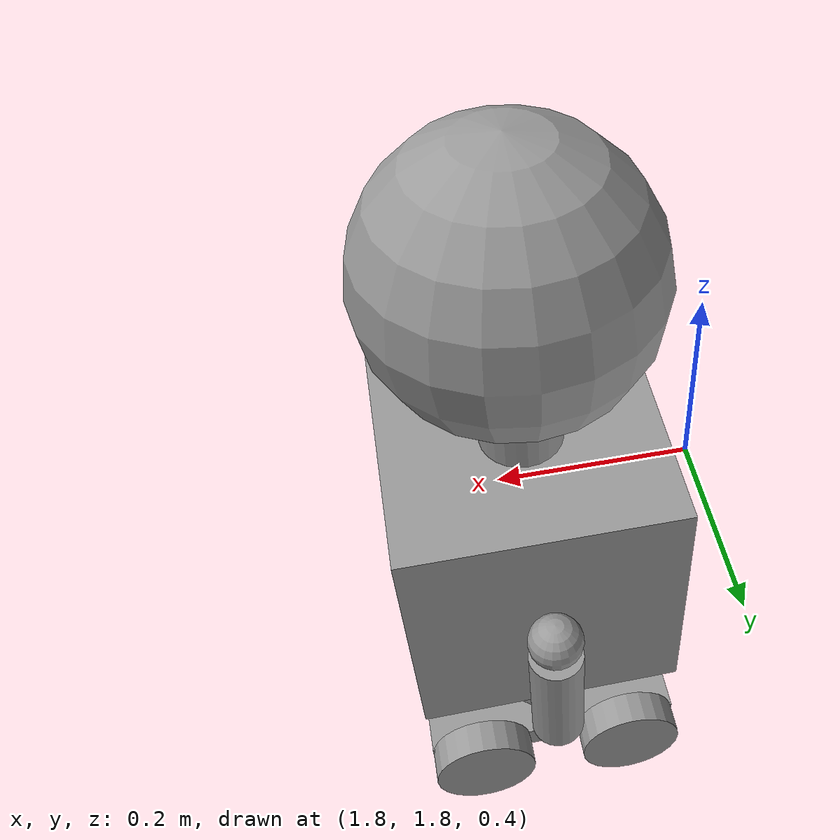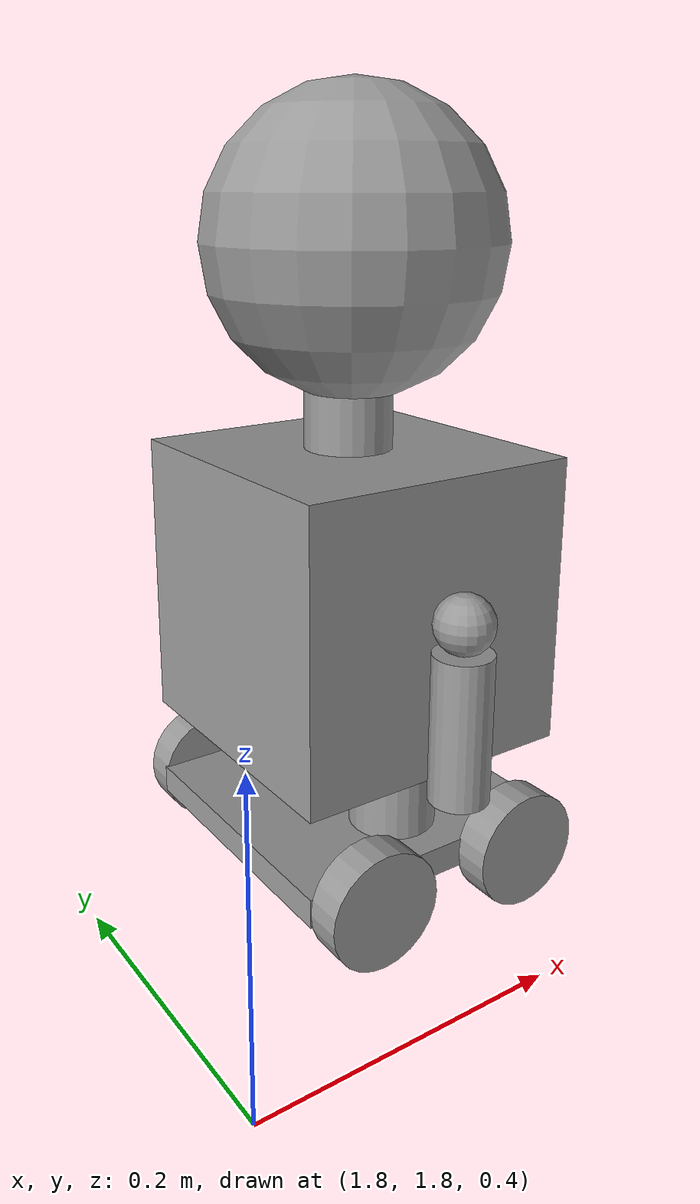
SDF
<?xml version='1.0'?>
<sdf version='1.6'>
  <model name='RoboX'>
    <link name='link_0'>
      <pose frame=''>2 1.99948 0.422775 0 -0 0</pose>
      <inertial>
        <mass>1</mass>
        <inertia>
          <ixx>0.166667</ixx>
          <ixy>0</ixy>
          <ixz>0</ixz>
          <iyy>0.166667</iyy>
          <iyz>0</iyz>
          <izz>0.166667</izz>
        </inertia>
        <pose frame=''>0 0 0 0 -0 0</pose>
      </inertial>
      <gravity>1</gravity>
      <self_collide>0</self_collide>
      <kinematic>0</kinematic>
      <visual name='visual'>
        <pose frame=''>0 0 0 0 -0 0</pose>
        <geometry>
          <box>
            <size>0.2 0.2 0.02</size>
          </box>
        </geometry>
        <material>
          <lighting>1</lighting>
          <script>
            <uri>file://media/materials/scripts/gazebo.material</uri>
            <name>Gazebo/Grey</name>
          </script>
          <shader type='pixel'>
            <normal_map>__default__</normal_map>
          </shader>
          <ambient>0.3 0.3 0.3 1</ambient>
          <diffuse>0.7 0.7 0.7 1</diffuse>
          <specular>0.01 0.01 0.01 1</specular>
          <emissive>0 0 0 1</emissive>
        </material>
        <transparency>0</transparency>
        <cast_shadows>1</cast_shadows>
      </visual>
      <collision name='collision'>
        <laser_retro>0</laser_retro>
        <max_contacts>10</max_contacts>
        <pose frame=''>0 0 0 0 -0 0</pose>
        <geometry>
          <box>
            <size>0.2 0.2 0.02</size>
          </box>
        </geometry>
        <surface>
          <friction>
            <ode>
              <mu>1</mu>
              <mu2>1</mu2>
              <fdir1>0 0 0</fdir1>
              <slip1>0</slip1>
              <slip2>0</slip2>
            </ode>
            <torsional>
              <coefficient>1</coefficient>
              <patch_radius>0</patch_radius>
              <surface_radius>0</surface_radius>
              <use_patch_radius>1</use_patch_radius>
              <ode>
                <slip>0</slip>
              </ode>
            </torsional>
          </friction>
          <bounce>
            <restitution_coefficient>0</restitution_coefficient>
            <threshold>1e+06</threshold>
          </bounce>
          <contact>
            <collide_without_contact>0</collide_without_contact>
            <collide_without_contact_bitmask>1</collide_without_contact_bitmask>
            <collide_bitmask>1</collide_bitmask>
            <ode>
              <soft_cfm>0</soft_cfm>
              <soft_erp>0.2</soft_erp>
              <kp>1e+13</kp>
              <kd>1</kd>
              <max_vel>0.01</max_vel>
              <min_depth>0</min_depth>
            </ode>
            <bullet>
              <split_impulse>1</split_impulse>
              <split_impulse_penetration_threshold>-0.01</split_impulse_penetration_threshold>
              <soft_cfm>0</soft_cfm>
              <soft_erp>0.2</soft_erp>
              <kp>1e+13</kp>
              <kd>1</kd>
            </bullet>
          </contact>
        </surface>
      </collision>
    </link>
    <link name='link_1'>
      <pose frame=''>1.94 1.88697 0.422775 1.5707 -0 0</pose>
      <inertial>
        <mass>1</mass>
        <inertia>
          <ixx>0.145833</ixx>
          <ixy>0</ixy>
          <ixz>0</ixz>
          <iyy>0.145833</iyy>
          <iyz>0</iyz>
          <izz>0.125</izz>
        </inertia>
        <pose frame=''>0 0 0 0 -0 0</pose>
      </inertial>
      <gravity>1</gravity>
      <self_collide>0</self_collide>
      <kinematic>0</kinematic>
      <visual name='visual'>
        <pose frame=''>0 0 0 0 -0 0</pose>
        <geometry>
          <cylinder>
            <radius>0.04</radius>
            <length>0.025</length>
          </cylinder>
        </geometry>
        <material>
          <lighting>1</lighting>
          <script>
            <uri>file://media/materials/scripts/gazebo.material</uri>
            <name>Gazebo/Grey</name>
          </script>
          <shader type='pixel'>
            <normal_map>__default__</normal_map>
          </shader>
          <ambient>0.3 0.3 0.3 1</ambient>
          <diffuse>0.7 0.7 0.7 1</diffuse>
          <specular>0.01 0.01 0.01 1</specular>
          <emissive>0 0 0 1</emissive>
        </material>
        <transparency>0</transparency>
        <cast_shadows>1</cast_shadows>
      </visual>
      <collision name='collision'>
        <laser_retro>0</laser_retro>
        <max_contacts>10</max_contacts>
        <pose frame=''>0 0 0 0 -0 0</pose>
        <geometry>
          <cylinder>
            <radius>0.04</radius>
            <length>0.025</length>
          </cylinder>
        </geometry>
        <surface>
          <friction>
            <ode>
              <mu>1</mu>
              <mu2>1</mu2>
              <fdir1>0 0 0</fdir1>
              <slip1>0</slip1>
              <slip2>0</slip2>
            </ode>
            <torsional>
              <coefficient>1</coefficient>
              <patch_radius>0</patch_radius>
              <surface_radius>0</surface_radius>
              <use_patch_radius>1</use_patch_radius>
              <ode>
                <slip>0</slip>
              </ode>
            </torsional>
          </friction>
          <bounce>
            <restitution_coefficient>0</restitution_coefficient>
            <threshold>1e+06</threshold>
          </bounce>
          <contact>
            <collide_without_contact>0</collide_without_contact>
            <collide_without_contact_bitmask>1</collide_without_contact_bitmask>
            <collide_bitmask>1</collide_bitmask>
            <ode>
              <soft_cfm>0</soft_cfm>
              <soft_erp>0.2</soft_erp>
              <kp>1e+13</kp>
              <kd>1</kd>
              <max_vel>0.01</max_vel>
              <min_depth>0</min_depth>
            </ode>
            <bullet>
              <split_impulse>1</split_impulse>
              <split_impulse_penetration_threshold>-0.01</split_impulse_penetration_threshold>
              <soft_cfm>0</soft_cfm>
              <soft_erp>0.2</soft_erp>
              <kp>1e+13</kp>
              <kd>1</kd>
            </bullet>
          </contact>
        </surface>
      </collision>
    </link>
    <link name='link_1_clone'>
      <pose frame=''>1.94 2.11011 0.422775 1.5707 -0 0</pose>
      <inertial>
        <mass>1</mass>
        <inertia>
          <ixx>0.145833</ixx>
          <ixy>0</ixy>
          <ixz>0</ixz>
          <iyy>0.145833</iyy>
          <iyz>0</iyz>
          <izz>0.125</izz>
        </inertia>
        <pose frame=''>0 0 0 0 -0 0</pose>
      </inertial>
      <self_collide>0</self_collide>
      <kinematic>0</kinematic>
      <gravity>1</gravity>
      <visual name='visual'>
        <pose frame=''>0 0 0 0 -0 0</pose>
        <geometry>
          <cylinder>
            <radius>0.04</radius>
            <length>0.025</length>
          </cylinder>
        </geometry>
        <material>
          <lighting>1</lighting>
          <script>
            <uri>file://media/materials/scripts/gazebo.material</uri>
            <name>Gazebo/Grey</name>
          </script>
          <shader type='pixel'>
            <normal_map>__default__</normal_map>
          </shader>
          <ambient>0.3 0.3 0.3 1</ambient>
          <diffuse>0.7 0.7 0.7 1</diffuse>
          <specular>0.01 0.01 0.01 1</specular>
          <emissive>0 0 0 1</emissive>
        </material>
        <transparency>0</transparency>
        <cast_shadows>1</cast_shadows>
      </visual>
      <collision name='collision'>
        <laser_retro>0</laser_retro>
        <max_contacts>10</max_contacts>
        <pose frame=''>0 0 0 0 -0 0</pose>
        <geometry>
          <cylinder>
            <radius>0.04</radius>
            <length>0.025</length>
          </cylinder>
        </geometry>
        <surface>
          <friction>
            <ode>
              <mu>1</mu>
              <mu2>1</mu2>
              <fdir1>0 0 0</fdir1>
              <slip1>0</slip1>
              <slip2>0</slip2>
            </ode>
            <torsional>
              <coefficient>1</coefficient>
              <patch_radius>0</patch_radius>
              <surface_radius>0</surface_radius>
              <use_patch_radius>1</use_patch_radius>
              <ode>
                <slip>0</slip>
              </ode>
            </torsional>
          </friction>
          <bounce>
            <restitution_coefficient>0</restitution_coefficient>
            <threshold>1e+06</threshold>
          </bounce>
          <contact>
            <collide_without_contact>0</collide_without_contact>
            <collide_without_contact_bitmask>1</collide_without_contact_bitmask>
            <collide_bitmask>1</collide_bitmask>
            <ode>
              <soft_cfm>0</soft_cfm>
              <soft_erp>0.2</soft_erp>
              <kp>1e+13</kp>
              <kd>1</kd>
              <max_vel>0.01</max_vel>
              <min_depth>0</min_depth>
            </ode>
            <bullet>
              <split_impulse>1</split_impulse>
              <split_impulse_penetration_threshold>-0.01</split_impulse_penetration_threshold>
              <soft_cfm>0</soft_cfm>
              <soft_erp>0.2</soft_erp>
              <kp>1e+13</kp>
              <kd>1</kd>
            </bullet>
          </contact>
        </surface>
      </collision>
    </link>
    <link name='link_1_clone_0'>
      <pose frame=''>2.06 1.88807 0.422775 1.5707 -0 0</pose>
      <inertial>
        <mass>1</mass>
        <inertia>
          <ixx>0.145833</ixx>
          <ixy>0</ixy>
          <ixz>0</ixz>
          <iyy>0.145833</iyy>
          <iyz>0</iyz>
          <izz>0.125</izz>
        </inertia>
        <pose frame=''>0 0 0 0 -0 0</pose>
      </inertial>
      <self_collide>0</self_collide>
      <kinematic>0</kinematic>
      <gravity>1</gravity>
      <visual name='visual'>
        <pose frame=''>0 0 0 0 -0 0</pose>
        <geometry>
          <cylinder>
            <radius>0.04</radius>
            <length>0.025</length>
          </cylinder>
        </geometry>
        <material>
          <lighting>1</lighting>
          <script>
            <uri>file://media/materials/scripts/gazebo.material</uri>
            <name>Gazebo/Grey</name>
          </script>
          <shader type='pixel'>
            <normal_map>__default__</normal_map>
          </shader>
          <ambient>0.3 0.3 0.3 1</ambient>
          <diffuse>0.7 0.7 0.7 1</diffuse>
          <specular>0.01 0.01 0.01 1</specular>
          <emissive>0 0 0 1</emissive>
        </material>
        <transparency>0</transparency>
        <cast_shadows>1</cast_shadows>
      </visual>
      <collision name='collision'>
        <laser_retro>0</laser_retro>
        <max_contacts>10</max_contacts>
        <pose frame=''>0 0 0 0 -0 0</pose>
        <geometry>
          <cylinder>
            <radius>0.04</radius>
            <length>0.025</length>
          </cylinder>
        </geometry>
        <surface>
          <friction>
            <ode>
              <mu>1</mu>
              <mu2>1</mu2>
              <fdir1>0 0 0</fdir1>
              <slip1>0</slip1>
              <slip2>0</slip2>
            </ode>
            <torsional>
              <coefficient>1</coefficient>
              <patch_radius>0</patch_radius>
              <surface_radius>0</surface_radius>
              <use_patch_radius>1</use_patch_radius>
              <ode>
                <slip>0</slip>
              </ode>
            </torsional>
          </friction>
          <bounce>
            <restitution_coefficient>0</restitution_coefficient>
            <threshold>1e+06</threshold>
          </bounce>
          <contact>
            <collide_without_contact>0</collide_without_contact>
            <collide_without_contact_bitmask>1</collide_without_contact_bitmask>
            <collide_bitmask>1</collide_bitmask>
            <ode>
              <soft_cfm>0</soft_cfm>
              <soft_erp>0.2</soft_erp>
              <kp>1e+13</kp>
              <kd>1</kd>
              <max_vel>0.01</max_vel>
              <min_depth>0</min_depth>
            </ode>
            <bullet>
              <split_impulse>1</split_impulse>
              <split_impulse_penetration_threshold>-0.01</split_impulse_penetration_threshold>
              <soft_cfm>0</soft_cfm>
              <soft_erp>0.2</soft_erp>
              <kp>1e+13</kp>
              <kd>1</kd>
            </bullet>
          </contact>
        </surface>
      </collision>
    </link>
    <link name='link_1_clone_1'>
      <pose frame=''>2.06 2.11011 0.422775 1.5707 -0 0</pose>
      <inertial>
        <mass>1</mass>
        <inertia>
          <ixx>0.145833</ixx>
          <ixy>0</ixy>
          <ixz>0</ixz>
          <iyy>0.145833</iyy>
          <iyz>0</iyz>
          <izz>0.125</izz>
        </inertia>
        <pose frame=''>0 0 0 0 -0 0</pose>
      </inertial>
      <self_collide>0</self_collide>
      <kinematic>0</kinematic>
      <gravity>1</gravity>
      <visual name='visual'>
        <pose frame=''>0 0 0 0 -0 0</pose>
        <geometry>
          <cylinder>
            <radius>0.04</radius>
            <length>0.025</length>
          </cylinder>
        </geometry>
        <material>
          <lighting>1</lighting>
          <script>
            <uri>file://media/materials/scripts/gazebo.material</uri>
            <name>Gazebo/Grey</name>
          </script>
          <shader type='pixel'>
            <normal_map>__default__</normal_map>
          </shader>
          <ambient>0.3 0.3 0.3 1</ambient>
          <diffuse>0.7 0.7 0.7 1</diffuse>
          <specular>0.01 0.01 0.01 1</specular>
          <emissive>0 0 0 1</emissive>
        </material>
        <transparency>0</transparency>
        <cast_shadows>1</cast_shadows>
      </visual>
      <collision name='collision'>
        <laser_retro>0</laser_retro>
        <max_contacts>10</max_contacts>
        <pose frame=''>0 0 0 0 -0 0</pose>
        <geometry>
          <cylinder>
            <radius>0.04</radius>
            <length>0.025</length>
          </cylinder>
        </geometry>
        <surface>
          <friction>
            <ode>
              <mu>1</mu>
              <mu2>1</mu2>
              <fdir1>0 0 0</fdir1>
              <slip1>0</slip1>
              <slip2>0</slip2>
            </ode>
            <torsional>
              <coefficient>1</coefficient>
              <patch_radius>0</patch_radius>
              <surface_radius>0</surface_radius>
              <use_patch_radius>1</use_patch_radius>
              <ode>
                <slip>0</slip>
              </ode>
            </torsional>
          </friction>
          <bounce>
            <restitution_coefficient>0</restitution_coefficient>
            <threshold>1e+06</threshold>
          </bounce>
          <contact>
            <collide_without_contact>0</collide_without_contact>
            <collide_without_contact_bitmask>1</collide_without_contact_bitmask>
            <collide_bitmask>1</collide_bitmask>
            <ode>
              <soft_cfm>0</soft_cfm>
              <soft_erp>0.2</soft_erp>
              <kp>1e+13</kp>
              <kd>1</kd>
              <max_vel>0.01</max_vel>
              <min_depth>0</min_depth>
            </ode>
            <bullet>
              <split_impulse>1</split_impulse>
              <split_impulse_penetration_threshold>-0.01</split_impulse_penetration_threshold>
              <soft_cfm>0</soft_cfm>
              <soft_erp>0.2</soft_erp>
              <kp>1e+13</kp>
              <kd>1</kd>
            </bullet>
          </contact>
        </surface>
      </collision>
    </link>
    <link name='link_2'>
      <pose frame=''>2 1.94895 0.472775 0 -0 0</pose>
      <inertial>
        <mass>1</mass>
        <inertia>
          <ixx>0.145833</ixx>
          <ixy>0</ixy>
          <ixz>0</ixz>
          <iyy>0.145833</iyy>
          <iyz>0</iyz>
          <izz>0.125</izz>
        </inertia>
        <pose frame=''>0 0 0 0 -0 0</pose>
      </inertial>
      <gravity>1</gravity>
      <self_collide>0</self_collide>
      <kinematic>0</kinematic>
      <visual name='visual'>
        <pose frame=''>0 0 0 0 -0 0</pose>
        <geometry>
          <cylinder>
            <radius>0.03</radius>
            <length>0.1</length>
          </cylinder>
        </geometry>
        <material>
          <lighting>1</lighting>
          <script>
            <uri>file://media/materials/scripts/gazebo.material</uri>
            <name>Gazebo/Grey</name>
          </script>
          <shader type='pixel'>
            <normal_map>__default__</normal_map>
          </shader>
          <ambient>0.3 0.3 0.3 1</ambient>
          <diffuse>0.7 0.7 0.7 1</diffuse>
          <specular>0.01 0.01 0.01 1</specular>
          <emissive>0 0 0 1</emissive>
        </material>
        <transparency>0</transparency>
        <cast_shadows>1</cast_shadows>
      </visual>
      <collision name='collision'>
        <laser_retro>0</laser_retro>
        <max_contacts>10</max_contacts>
        <pose frame=''>0 0 0 0 -0 0</pose>
        <geometry>
          <cylinder>
            <radius>0.03</radius>
            <length>0.1</length>
          </cylinder>
        </geometry>
        <surface>
          <friction>
            <ode>
              <mu>1</mu>
              <mu2>1</mu2>
              <fdir1>0 0 0</fdir1>
              <slip1>0</slip1>
              <slip2>0</slip2>
            </ode>
            <torsional>
              <coefficient>1</coefficient>
              <patch_radius>0</patch_radius>
              <surface_radius>0</surface_radius>
              <use_patch_radius>1</use_patch_radius>
              <ode>
                <slip>0</slip>
              </ode>
            </torsional>
          </friction>
          <bounce>
            <restitution_coefficient>0</restitution_coefficient>
            <threshold>1e+06</threshold>
          </bounce>
          <contact>
            <collide_without_contact>0</collide_without_contact>
            <collide_without_contact_bitmask>1</collide_without_contact_bitmask>
            <collide_bitmask>1</collide_bitmask>
            <ode>
              <soft_cfm>0</soft_cfm>
              <soft_erp>0.2</soft_erp>
              <kp>1e+13</kp>
              <kd>1</kd>
              <max_vel>0.01</max_vel>
              <min_depth>0</min_depth>
            </ode>
            <bullet>
              <split_impulse>1</split_impulse>
              <split_impulse_penetration_threshold>-0.01</split_impulse_penetration_threshold>
              <soft_cfm>0</soft_cfm>
              <soft_erp>0.2</soft_erp>
              <kp>1e+13</kp>
              <kd>1</kd>
            </bullet>
          </contact>
        </surface>
      </collision>
    </link>
    <link name='link_2_clone'>
      <pose frame=''>2 2.04895 0.472775 0 -0 0</pose>
      <inertial>
        <mass>1</mass>
        <inertia>
          <ixx>0.145833</ixx>
          <ixy>0</ixy>
          <ixz>0</ixz>
          <iyy>0.145833</iyy>
          <iyz>0</iyz>
          <izz>0.125</izz>
        </inertia>
        <pose frame=''>0 0 0 0 -0 0</pose>
      </inertial>
      <self_collide>0</self_collide>
      <kinematic>0</kinematic>
      <gravity>1</gravity>
      <visual name='visual'>
        <pose frame=''>0 0 0 0 -0 0</pose>
        <geometry>
          <cylinder>
            <radius>0.03</radius>
            <length>0.1</length>
          </cylinder>
        </geometry>
        <material>
          <lighting>1</lighting>
          <script>
            <uri>file://media/materials/scripts/gazebo.material</uri>
            <name>Gazebo/Grey</name>
          </script>
          <shader type='pixel'>
            <normal_map>__default__</normal_map>
          </shader>
          <ambient>0.3 0.3 0.3 1</ambient>
          <diffuse>0.7 0.7 0.7 1</diffuse>
          <specular>0.01 0.01 0.01 1</specular>
          <emissive>0 0 0 1</emissive>
        </material>
        <transparency>0</transparency>
        <cast_shadows>1</cast_shadows>
      </visual>
      <collision name='collision'>
        <laser_retro>0</laser_retro>
        <max_contacts>10</max_contacts>
        <pose frame=''>0 0 0 0 -0 0</pose>
        <geometry>
          <cylinder>
            <radius>0.03</radius>
            <length>0.1</length>
          </cylinder>
        </geometry>
        <surface>
          <friction>
            <ode>
              <mu>1</mu>
              <mu2>1</mu2>
              <fdir1>0 0 0</fdir1>
              <slip1>0</slip1>
              <slip2>0</slip2>
            </ode>
            <torsional>
              <coefficient>1</coefficient>
              <patch_radius>0</patch_radius>
              <surface_radius>0</surface_radius>
              <use_patch_radius>1</use_patch_radius>
              <ode>
                <slip>0</slip>
              </ode>
            </torsional>
          </friction>
          <bounce>
            <restitution_coefficient>0</restitution_coefficient>
            <threshold>1e+06</threshold>
          </bounce>
          <contact>
            <collide_without_contact>0</collide_without_contact>
            <collide_without_contact_bitmask>1</collide_without_contact_bitmask>
            <collide_bitmask>1</collide_bitmask>
            <ode>
              <soft_cfm>0</soft_cfm>
              <soft_erp>0.2</soft_erp>
              <kp>1e+13</kp>
              <kd>1</kd>
              <max_vel>0.01</max_vel>
              <min_depth>0</min_depth>
            </ode>
            <bullet>
              <split_impulse>1</split_impulse>
              <split_impulse_penetration_threshold>-0.01</split_impulse_penetration_threshold>
              <soft_cfm>0</soft_cfm>
              <soft_erp>0.2</soft_erp>
              <kp>1e+13</kp>
              <kd>1</kd>
            </bullet>
          </contact>
        </surface>
      </collision>
    </link>
    <link name='link_2_clone_clone'>
      <pose frame=''>2 2.00366 0.721525 0 -0 0</pose>
      <inertial>
        <mass>1</mass>
        <inertia>
          <ixx>0.145833</ixx>
          <ixy>0</ixy>
          <ixz>0</ixz>
          <iyy>0.145833</iyy>
          <iyz>0</iyz>
          <izz>0.125</izz>
        </inertia>
        <pose frame=''>0 0 0 0 -0 0</pose>
      </inertial>
      <self_collide>0</self_collide>
      <kinematic>0</kinematic>
      <gravity>1</gravity>
      <visual name='visual'>
        <pose frame=''>0 0 0 0 -0 0</pose>
        <geometry>
          <cylinder>
            <radius>0.03</radius>
            <length>0.1</length>
          </cylinder>
        </geometry>
        <material>
          <lighting>1</lighting>
          <script>
            <uri>file://media/materials/scripts/gazebo.material</uri>
            <name>Gazebo/Grey</name>
          </script>
          <shader type='pixel'>
            <normal_map>__default__</normal_map>
          </shader>
          <ambient>0.3 0.3 0.3 1</ambient>
          <diffuse>0.7 0.7 0.7 1</diffuse>
          <specular>0.01 0.01 0.01 1</specular>
          <emissive>0 0 0 1</emissive>
        </material>
        <transparency>0</transparency>
        <cast_shadows>1</cast_shadows>
      </visual>
      <collision name='collision'>
        <laser_retro>0</laser_retro>
        <max_contacts>10</max_contacts>
        <pose frame=''>0 0 0 0 -0 0</pose>
        <geometry>
          <cylinder>
            <radius>0.03</radius>
            <length>0.1</length>
          </cylinder>
        </geometry>
        <surface>
          <friction>
            <ode>
              <mu>1</mu>
              <mu2>1</mu2>
              <fdir1>0 0 0</fdir1>
              <slip1>0</slip1>
              <slip2>0</slip2>
            </ode>
            <torsional>
              <coefficient>1</coefficient>
              <patch_radius>0</patch_radius>
              <surface_radius>0</surface_radius>
              <use_patch_radius>1</use_patch_radius>
              <ode>
                <slip>0</slip>
              </ode>
            </torsional>
          </friction>
          <bounce>
            <restitution_coefficient>0</restitution_coefficient>
            <threshold>1e+06</threshold>
          </bounce>
          <contact>
            <collide_without_contact>0</collide_without_contact>
            <collide_without_contact_bitmask>1</collide_without_contact_bitmask>
            <collide_bitmask>1</collide_bitmask>
            <ode>
              <soft_cfm>0</soft_cfm>
              <soft_erp>0.2</soft_erp>
              <kp>1e+13</kp>
              <kd>1</kd>
              <max_vel>0.01</max_vel>
              <min_depth>0</min_depth>
            </ode>
            <bullet>
              <split_impulse>1</split_impulse>
              <split_impulse_penetration_threshold>-0.01</split_impulse_penetration_threshold>
              <soft_cfm>0</soft_cfm>
              <soft_erp>0.2</soft_erp>
              <kp>1e+13</kp>
              <kd>1</kd>
            </bullet>
          </contact>
        </surface>
      </collision>
    </link>
    <link name='link_3'>
      <pose frame=''>2 1.99948 0.587061 0 -0 0</pose>
      <inertial>
        <mass>1</mass>
        <inertia>
          <ixx>0.166667</ixx>
          <ixy>0</ixy>
          <ixz>0</ixz>
          <iyy>0.166667</iyy>
          <iyz>0</iyz>
          <izz>0.166667</izz>
        </inertia>
        <pose frame=''>0 0 0 0 -0 0</pose>
      </inertial>
      <gravity>1</gravity>
      <self_collide>0</self_collide>
      <kinematic>0</kinematic>
      <visual name='visual'>
        <pose frame=''>0 0 0 0 -0 0</pose>
        <geometry>
          <box>
            <size>0.2 0.2 0.2</size>
          </box>
        </geometry>
        <material>
          <lighting>1</lighting>
          <script>
            <uri>file://media/materials/scripts/gazebo.material</uri>
            <name>Gazebo/Grey</name>
          </script>
          <shader type='pixel'>
            <normal_map>__default__</normal_map>
          </shader>
          <ambient>0.3 0.3 0.3 1</ambient>
          <diffuse>0.7 0.7 0.7 1</diffuse>
          <specular>0.01 0.01 0.01 1</specular>
          <emissive>0 0 0 1</emissive>
        </material>
        <transparency>0</transparency>
        <cast_shadows>1</cast_shadows>
      </visual>
      <collision name='collision'>
        <laser_retro>0</laser_retro>
        <max_contacts>10</max_contacts>
        <pose frame=''>0 0 0 0 -0 0</pose>
        <geometry>
          <box>
            <size>0.2 0.2 0.2</size>
          </box>
        </geometry>
        <surface>
          <friction>
            <ode>
              <mu>1</mu>
              <mu2>1</mu2>
              <fdir1>0 0 0</fdir1>
              <slip1>0</slip1>
              <slip2>0</slip2>
            </ode>
            <torsional>
              <coefficient>1</coefficient>
              <patch_radius>0</patch_radius>
              <surface_radius>0</surface_radius>
              <use_patch_radius>1</use_patch_radius>
              <ode>
                <slip>0</slip>
              </ode>
            </torsional>
          </friction>
          <bounce>
            <restitution_coefficient>0</restitution_coefficient>
            <threshold>1e+06</threshold>
          </bounce>
          <contact>
            <collide_without_contact>0</collide_without_contact>
            <collide_without_contact_bitmask>1</collide_without_contact_bitmask>
            <collide_bitmask>1</collide_bitmask>
            <ode>
              <soft_cfm>0</soft_cfm>
              <soft_erp>0.2</soft_erp>
              <kp>1e+13</kp>
              <kd>1</kd>
              <max_vel>0.01</max_vel>
              <min_depth>0</min_depth>
            </ode>
            <bullet>
              <split_impulse>1</split_impulse>
              <split_impulse_penetration_threshold>-0.01</split_impulse_penetration_threshold>
              <soft_cfm>0</soft_cfm>
              <soft_erp>0.2</soft_erp>
              <kp>1e+13</kp>
              <kd>1</kd>
            </bullet>
          </contact>
        </surface>
      </collision>
    </link>
    <link name='link_4'>
      <pose frame=''>2 1.99901 0.821525 0 -0 0</pose>
      <inertial>
        <mass>1</mass>
        <inertia>
          <ixx>0.1</ixx>
          <ixy>0</ixy>
          <ixz>0</ixz>
          <iyy>0.1</iyy>
          <iyz>0</iyz>
          <izz>0.1</izz>
        </inertia>
        <pose frame=''>0 0 0 0 -0 0</pose>
      </inertial>
      <gravity>1</gravity>
      <self_collide>0</self_collide>
      <kinematic>0</kinematic>
      <visual name='visual'>
        <pose frame=''>0 0 0 0 -0 0</pose>
        <geometry>
          <sphere>
            <radius>0.1</radius>
          </sphere>
        </geometry>
        <material>
          <lighting>1</lighting>
          <script>
            <uri>file://media/materials/scripts/gazebo.material</uri>
            <name>Gazebo/Grey</name>
          </script>
          <shader type='pixel'>
            <normal_map>__default__</normal_map>
          </shader>
          <ambient>0.3 0.3 0.3 1</ambient>
          <diffuse>0.7 0.7 0.7 1</diffuse>
          <specular>0.01 0.01 0.01 1</specular>
          <emissive>0 0 0 1</emissive>
        </material>
        <transparency>0</transparency>
        <cast_shadows>1</cast_shadows>
      </visual>
      <collision name='collision'>
        <laser_retro>0</laser_retro>
        <max_contacts>10</max_contacts>
        <pose frame=''>0 0 0 0 -0 0</pose>
        <geometry>
          <sphere>
            <radius>0.1</radius>
          </sphere>
        </geometry>
        <surface>
          <friction>
            <ode>
              <mu>1</mu>
              <mu2>1</mu2>
              <fdir1>0 0 0</fdir1>
              <slip1>0</slip1>
              <slip2>0</slip2>
            </ode>
            <torsional>
              <coefficient>1</coefficient>
              <patch_radius>0</patch_radius>
              <surface_radius>0</surface_radius>
              <use_patch_radius>1</use_patch_radius>
              <ode>
                <slip>0</slip>
              </ode>
            </torsional>
          </friction>
          <bounce>
            <restitution_coefficient>0</restitution_coefficient>
            <threshold>1e+06</threshold>
          </bounce>
          <contact>
            <collide_without_contact>0</collide_without_contact>
            <collide_without_contact_bitmask>1</collide_without_contact_bitmask>
            <collide_bitmask>1</collide_bitmask>
            <ode>
              <soft_cfm>0</soft_cfm>
              <soft_erp>0.2</soft_erp>
              <kp>1e+13</kp>
              <kd>1</kd>
              <max_vel>0.01</max_vel>
              <min_depth>0</min_depth>
            </ode>
            <bullet>
              <split_impulse>1</split_impulse>
              <split_impulse_penetration_threshold>-0.01</split_impulse_penetration_threshold>
              <soft_cfm>0</soft_cfm>
              <soft_erp>0.2</soft_erp>
              <kp>1e+13</kp>
              <kd>1</kd>
            </bullet>
          </contact>
        </surface>
      </collision>
    </link>
    <link name='link_5'>
      <pose frame=''>2 2.11994 0.600204 0 -0 0</pose>
      <inertial>
        <mass>1</mass>
        <inertia>
          <ixx>0.1</ixx>
          <ixy>0</ixy>
          <ixz>0</ixz>
          <iyy>0.1</iyy>
          <iyz>0</iyz>
          <izz>0.1</izz>
        </inertia>
        <pose frame=''>0 0 0 0 -0 0</pose>
      </inertial>
      <gravity>1</gravity>
      <self_collide>0</self_collide>
      <kinematic>0</kinematic>
      <visual name='visual'>
        <pose frame=''>0 0 0 0 -0 0</pose>
        <geometry>
          <sphere>
            <radius>0.02</radius>
          </sphere>
        </geometry>
        <material>
          <lighting>1</lighting>
          <script>
            <uri>file://media/materials/scripts/gazebo.material</uri>
            <name>Gazebo/Grey</name>
          </script>
          <shader type='pixel'>
            <normal_map>__default__</normal_map>
          </shader>
          <ambient>0.3 0.3 0.3 1</ambient>
          <diffuse>0.7 0.7 0.7 1</diffuse>
          <specular>0.01 0.01 0.01 1</specular>
          <emissive>0 0 0 1</emissive>
        </material>
        <transparency>0</transparency>
        <cast_shadows>1</cast_shadows>
      </visual>
      <collision name='collision'>
        <laser_retro>0</laser_retro>
        <max_contacts>10</max_contacts>
        <pose frame=''>0 0 0 0 -0 0</pose>
        <geometry>
          <sphere>
            <radius>0.02</radius>
          </sphere>
        </geometry>
        <surface>
          <friction>
            <ode>
              <mu>1</mu>
              <mu2>1</mu2>
              <fdir1>0 0 0</fdir1>
              <slip1>0</slip1>
              <slip2>0</slip2>
            </ode>
            <torsional>
              <coefficient>1</coefficient>
              <patch_radius>0</patch_radius>
              <surface_radius>0</surface_radius>
              <use_patch_radius>1</use_patch_radius>
              <ode>
                <slip>0</slip>
              </ode>
            </torsional>
          </friction>
          <bounce>
            <restitution_coefficient>0</restitution_coefficient>
            <threshold>1e+06</threshold>
          </bounce>
          <contact>
            <collide_without_contact>0</collide_without_contact>
            <collide_without_contact_bitmask>1</collide_without_contact_bitmask>
            <collide_bitmask>1</collide_bitmask>
            <ode>
              <soft_cfm>0</soft_cfm>
              <soft_erp>0.2</soft_erp>
              <kp>1e+13</kp>
              <kd>1</kd>
              <max_vel>0.01</max_vel>
              <min_depth>0</min_depth>
            </ode>
            <bullet>
              <split_impulse>1</split_impulse>
              <split_impulse_penetration_threshold>-0.01</split_impulse_penetration_threshold>
              <soft_cfm>0</soft_cfm>
              <soft_erp>0.2</soft_erp>
              <kp>1e+13</kp>
              <kd>1</kd>
            </bullet>
          </contact>
        </surface>
      </collision>
    </link>
    <link name='link_5_clone'>
      <pose frame=''>2 1.87994 0.600204 0 -0 0</pose>
      <inertial>
        <mass>1</mass>
        <inertia>
          <ixx>0.1</ixx>
          <ixy>0</ixy>
          <ixz>0</ixz>
          <iyy>0.1</iyy>
          <iyz>0</iyz>
          <izz>0.1</izz>
        </inertia>
        <pose frame=''>0 0 0 0 -0 0</pose>
      </inertial>
      <self_collide>0</self_collide>
      <kinematic>0</kinematic>
      <gravity>1</gravity>
      <visual name='visual'>
        <pose frame=''>0 0 0 0 -0 0</pose>
        <geometry>
          <sphere>
            <radius>0.02</radius>
          </sphere>
        </geometry>
        <material>
          <lighting>1</lighting>
          <script>
            <uri>file://media/materials/scripts/gazebo.material</uri>
            <name>Gazebo/Grey</name>
          </script>
          <shader type='pixel'>
            <normal_map>__default__</normal_map>
          </shader>
          <ambient>0.3 0.3 0.3 1</ambient>
          <diffuse>0.7 0.7 0.7 1</diffuse>
          <specular>0.01 0.01 0.01 1</specular>
          <emissive>0 0 0 1</emissive>
        </material>
        <transparency>0</transparency>
        <cast_shadows>1</cast_shadows>
      </visual>
      <collision name='collision'>
        <laser_retro>0</laser_retro>
        <max_contacts>10</max_contacts>
        <pose frame=''>0 0 0 0 -0 0</pose>
        <geometry>
          <sphere>
            <radius>0.02</radius>
          </sphere>
        </geometry>
        <surface>
          <friction>
            <ode>
              <mu>1</mu>
              <mu2>1</mu2>
              <fdir1>0 0 0</fdir1>
              <slip1>0</slip1>
              <slip2>0</slip2>
            </ode>
            <torsional>
              <coefficient>1</coefficient>
              <patch_radius>0</patch_radius>
              <surface_radius>0</surface_radius>
              <use_patch_radius>1</use_patch_radius>
              <ode>
                <slip>0</slip>
              </ode>
            </torsional>
          </friction>
          <bounce>
            <restitution_coefficient>0</restitution_coefficient>
            <threshold>1e+06</threshold>
          </bounce>
          <contact>
            <collide_without_contact>0</collide_without_contact>
            <collide_without_contact_bitmask>1</collide_without_contact_bitmask>
            <collide_bitmask>1</collide_bitmask>
            <ode>
              <soft_cfm>0</soft_cfm>
              <soft_erp>0.2</soft_erp>
              <kp>1e+13</kp>
              <kd>1</kd>
              <max_vel>0.01</max_vel>
              <min_depth>0</min_depth>
            </ode>
            <bullet>
              <split_impulse>1</split_impulse>
              <split_impulse_penetration_threshold>-0.01</split_impulse_penetration_threshold>
              <soft_cfm>0</soft_cfm>
              <soft_erp>0.2</soft_erp>
              <kp>1e+13</kp>
              <kd>1</kd>
            </bullet>
          </contact>
        </surface>
      </collision>
    </link>
    <link name='link_6'>
      <pose frame=''>2 2.11994 0.531067 0 -0 0</pose>
      <inertial>
        <mass>1</mass>
        <inertia>
          <ixx>0.145833</ixx>
          <ixy>0</ixy>
          <ixz>0</ixz>
          <iyy>0.145833</iyy>
          <iyz>0</iyz>
          <izz>0.125</izz>
        </inertia>
        <pose frame=''>0 0 0 0 -0 0</pose>
      </inertial>
      <gravity>1</gravity>
      <self_collide>0</self_collide>
      <kinematic>0</kinematic>
      <visual name='visual'>
        <pose frame=''>0 0 0 0 -0 0</pose>
        <geometry>
          <cylinder>
            <radius>0.02</radius>
            <length>0.1</length>
          </cylinder>
        </geometry>
        <material>
          <lighting>1</lighting>
          <script>
            <uri>file://media/materials/scripts/gazebo.material</uri>
            <name>Gazebo/Grey</name>
          </script>
          <shader type='pixel'>
            <normal_map>__default__</normal_map>
          </shader>
          <ambient>0.3 0.3 0.3 1</ambient>
          <diffuse>0.7 0.7 0.7 1</diffuse>
          <specular>0.01 0.01 0.01 1</specular>
          <emissive>0 0 0 1</emissive>
        </material>
        <transparency>0</transparency>
        <cast_shadows>1</cast_shadows>
      </visual>
      <collision name='collision'>
        <laser_retro>0</laser_retro>
        <max_contacts>10</max_contacts>
        <pose frame=''>0 0 0 0 -0 0</pose>
        <geometry>
          <cylinder>
            <radius>0.02</radius>
            <length>0.1</length>
          </cylinder>
        </geometry>
        <surface>
          <friction>
            <ode>
              <mu>1</mu>
              <mu2>1</mu2>
              <fdir1>0 0 0</fdir1>
              <slip1>0</slip1>
              <slip2>0</slip2>
            </ode>
            <torsional>
              <coefficient>1</coefficient>
              <patch_radius>0</patch_radius>
              <surface_radius>0</surface_radius>
              <use_patch_radius>1</use_patch_radius>
              <ode>
                <slip>0</slip>
              </ode>
            </torsional>
          </friction>
          <bounce>
            <restitution_coefficient>0</restitution_coefficient>
            <threshold>1e+06</threshold>
          </bounce>
          <contact>
            <collide_without_contact>0</collide_without_contact>
            <collide_without_contact_bitmask>1</collide_without_contact_bitmask>
            <collide_bitmask>1</collide_bitmask>
            <ode>
              <soft_cfm>0</soft_cfm>
              <soft_erp>0.2</soft_erp>
              <kp>1e+13</kp>
              <kd>1</kd>
              <max_vel>0.01</max_vel>
              <min_depth>0</min_depth>
            </ode>
            <bullet>
              <split_impulse>1</split_impulse>
              <split_impulse_penetration_threshold>-0.01</split_impulse_penetration_threshold>
              <soft_cfm>0</soft_cfm>
              <soft_erp>0.2</soft_erp>
              <kp>1e+13</kp>
              <kd>1</kd>
            </bullet>
          </contact>
        </surface>
      </collision>
    </link>
    <link name='link_6_clone'>
      <pose frame=''>2 1.87994 0.531067 0 -0 0</pose>
      <inertial>
        <mass>1</mass>
        <inertia>
          <ixx>0.145833</ixx>
          <ixy>0</ixy>
          <ixz>0</ixz>
          <iyy>0.145833</iyy>
          <iyz>0</iyz>
          <izz>0.125</izz>
        </inertia>
        <pose frame=''>0 0 0 0 -0 0</pose>
      </inertial>
      <self_collide>0</self_collide>
      <kinematic>0</kinematic>
      <gravity>1</gravity>
      <visual name='visual'>
        <pose frame=''>0 0 0 0 -0 0</pose>
        <geometry>
          <cylinder>
            <radius>0.02</radius>
            <length>0.1</length>
          </cylinder>
        </geometry>
        <material>
          <lighting>1</lighting>
          <script>
            <uri>file://media/materials/scripts/gazebo.material</uri>
            <name>Gazebo/Grey</name>
          </script>
          <shader type='pixel'>
            <normal_map>__default__</normal_map>
          </shader>
          <ambient>0.3 0.3 0.3 1</ambient>
          <diffuse>0.7 0.7 0.7 1</diffuse>
          <specular>0.01 0.01 0.01 1</specular>
          <emissive>0 0 0 1</emissive>
        </material>
        <transparency>0</transparency>
        <cast_shadows>1</cast_shadows>
      </visual>
      <collision name='collision'>
        <laser_retro>0</laser_retro>
        <max_contacts>10</max_contacts>
        <pose frame=''>0 0 0 0 -0 0</pose>
        <geometry>
          <cylinder>
            <radius>0.02</radius>
            <length>0.1</length>
          </cylinder>
        </geometry>
        <surface>
          <friction>
            <ode>
              <mu>1</mu>
              <mu2>1</mu2>
              <fdir1>0 0 0</fdir1>
              <slip1>0</slip1>
              <slip2>0</slip2>
            </ode>
            <torsional>
              <coefficient>1</coefficient>
              <patch_radius>0</patch_radius>
              <surface_radius>0</surface_radius>
              <use_patch_radius>1</use_patch_radius>
              <ode>
                <slip>0</slip>
              </ode>
            </torsional>
          </friction>
          <bounce>
            <restitution_coefficient>0</restitution_coefficient>
            <threshold>1e+06</threshold>
          </bounce>
          <contact>
            <collide_without_contact>0</collide_without_contact>
            <collide_without_contact_bitmask>1</collide_without_contact_bitmask>
            <collide_bitmask>1</collide_bitmask>
            <ode>
              <soft_cfm>0</soft_cfm>
              <soft_erp>0.2</soft_erp>
              <kp>1e+13</kp>
              <kd>1</kd>
              <max_vel>0.01</max_vel>
              <min_depth>0</min_depth>
            </ode>
            <bullet>
              <split_impulse>1</split_impulse>
              <split_impulse_penetration_threshold>-0.01</split_impulse_penetration_threshold>
              <soft_cfm>0</soft_cfm>
              <soft_erp>0.2</soft_erp>
              <kp>1e+13</kp>
              <kd>1</kd>
            </bullet>
          </contact>
        </surface>
      </collision>
    </link>
    <joint name='link_wheel1' type='revolute'>
      <parent>link_0</parent>
      <child>link_1</child>
      <pose frame=''>0 0 0 0 -0 0</pose>
      <axis>
        <xyz>0 0 1</xyz>
        <use_parent_model_frame>0</use_parent_model_frame>
        <limit>
          <lower>-1.79769e+308</lower>
          <upper>1.79769e+308</upper>
          <effort>-1</effort>
          <velocity>-1</velocity>
        </limit>
        <dynamics>
          <spring_reference>0</spring_reference>
          <spring_stiffness>0</spring_stiffness>
          <damping>0</damping>
          <friction>0</friction>
        </dynamics>
      </axis>
      <physics>
        <ode>
          <limit>
            <cfm>0</cfm>
            <erp>0.2</erp>
          </limit>
          <suspension>
            <cfm>0</cfm>
            <erp>0.2</erp>
          </suspension>
        </ode>
      </physics>
    </joint>
    <joint name='link_wheel2' type='revolute'>
      <parent>link_0</parent>
      <child>link_1_clone</child>
      <pose frame=''>0 0 0 0 -0 0</pose>
      <axis>
        <xyz>0 0 1</xyz>
        <use_parent_model_frame>0</use_parent_model_frame>
        <limit>
          <lower>-1.79769e+308</lower>
          <upper>1.79769e+308</upper>
          <effort>-1</effort>
          <velocity>-1</velocity>
        </limit>
        <dynamics>
          <spring_reference>0</spring_reference>
          <spring_stiffness>0</spring_stiffness>
          <damping>0</damping>
          <friction>0</friction>
        </dynamics>
      </axis>
      <physics>
        <ode>
          <limit>
            <cfm>0</cfm>
            <erp>0.2</erp>
          </limit>
          <suspension>
            <cfm>0</cfm>
            <erp>0.2</erp>
          </suspension>
        </ode>
      </physics>
    </joint>
    <joint name='link_wheel3' type='revolute'>
      <parent>link_0</parent>
      <child>link_1_clone_0</child>
      <pose frame=''>0 0 0 0 -0 0</pose>
      <axis>
        <xyz>0 0 1</xyz>
        <use_parent_model_frame>0</use_parent_model_frame>
        <limit>
          <lower>-1.79769e+308</lower>
          <upper>1.79769e+308</upper>
          <effort>-1</effort>
          <velocity>-1</velocity>
        </limit>
        <dynamics>
          <spring_reference>0</spring_reference>
          <spring_stiffness>0</spring_stiffness>
          <damping>0</damping>
          <friction>0</friction>
        </dynamics>
      </axis>
      <physics>
        <ode>
          <limit>
            <cfm>0</cfm>
            <erp>0.2</erp>
          </limit>
          <suspension>
            <cfm>0</cfm>
            <erp>0.2</erp>
          </suspension>
        </ode>
      </physics>
    </joint>
    <joint name='link_wheel4' type='revolute'>
      <parent>link_0</parent>
      <child>link_1_clone_1</child>
      <pose frame=''>0 0 0 0 -0 0</pose>
      <axis>
        <xyz>0 0 1</xyz>
        <use_parent_model_frame>0</use_parent_model_frame>
        <limit>
          <lower>-1.79769e+308</lower>
          <upper>1.79769e+308</upper>
          <effort>-1</effort>
          <velocity>-1</velocity>
        </limit>
        <dynamics>
          <spring_reference>0</spring_reference>
          <spring_stiffness>0</spring_stiffness>
          <damping>0</damping>
          <friction>0</friction>
        </dynamics>
      </axis>
      <physics>
        <ode>
          <limit>
            <cfm>0</cfm>
            <erp>0.2</erp>
          </limit>
          <suspension>
            <cfm>0</cfm>
            <erp>0.2</erp>
          </suspension>
        </ode>
      </physics>
    </joint>
    <joint name='link_leg_R' type='fixed'>
      <parent>link_2</parent>
      <child>link_0</child>
      <pose frame=''>0 0 0 0 -0 0</pose>
      <physics>
        <ode>
          <limit>
            <cfm>0</cfm>
            <erp>0.2</erp>
          </limit>
          <suspension>
            <cfm>0</cfm>
            <erp>0.2</erp>
          </suspension>
        </ode>
      </physics>
    </joint>
    <joint name='link_leg_L' type='fixed'>
      <parent>link_2_clone</parent>
      <child>link_0</child>
      <pose frame=''>0 0 0 0 -0 0</pose>
      <physics>
        <ode>
          <limit>
            <cfm>0</cfm>
            <erp>0.2</erp>
          </limit>
          <suspension>
            <cfm>0</cfm>
            <erp>0.2</erp>
          </suspension>
        </ode>
      </physics>
    </joint>
    <joint name='link_body_leg_L' type='fixed'>
      <parent>link_3</parent>
      <child>link_2_clone</child>
      <pose frame=''>0 0 0 0 -0 0</pose>
      <physics>
        <ode>
          <limit>
            <cfm>0</cfm>
            <erp>0.2</erp>
          </limit>
          <suspension>
            <cfm>0</cfm>
            <erp>0.2</erp>
          </suspension>
        </ode>
      </physics>
    </joint>
    <joint name='link_body_neck' type='fixed'>
      <parent>link_3</parent>
      <child>link_2_clone_clone</child>
      <pose frame=''>0 0 0 0 -0 0</pose>
      <physics>
        <ode>
          <limit>
            <cfm>0</cfm>
            <erp>0.2</erp>
          </limit>
          <suspension>
            <cfm>0</cfm>
            <erp>0.2</erp>
          </suspension>
        </ode>
      </physics>
    </joint>
    <joint name='link_body_L.arm' type='fixed'>
      <parent>link_3</parent>
      <child>link_5</child>
      <pose frame=''>0 0 0 0 -0 0</pose>
      <physics>
        <ode>
          <limit>
            <cfm>0</cfm>
            <erp>0.2</erp>
          </limit>
          <suspension>
            <cfm>0</cfm>
            <erp>0.2</erp>
          </suspension>
        </ode>
      </physics>
    </joint>
    <joint name='link_body_R.arm' type='fixed'>
      <parent>link_3</parent>
      <child>link_5_clone</child>
      <pose frame=''>0 0 0 0 -0 0</pose>
      <physics>
        <ode>
          <limit>
            <cfm>0</cfm>
            <erp>0.2</erp>
          </limit>
          <suspension>
            <cfm>0</cfm>
            <erp>0.2</erp>
          </suspension>
        </ode>
      </physics>
    </joint>
    <joint name='link_body_leg_R' type='fixed'>
      <parent>link_3</parent>
      <child>link_2</child>
      <pose frame=''>0 0 0 0 -0 0</pose>
      <physics>
        <ode>
          <limit>
            <cfm>0</cfm>
            <erp>0.2</erp>
          </limit>
          <suspension>
            <cfm>0</cfm>
            <erp>0.2</erp>
          </suspension>
        </ode>
      </physics>
    </joint>
    <joint name='link_head_neck' type='fixed'>
      <parent>link_4</parent>
      <child>link_2_clone_clone</child>
      <pose frame=''>0 0 0 0 -0 0</pose>
      <physics>
        <ode>
          <limit>
            <cfm>0</cfm>
            <erp>0.2</erp>
          </limit>
          <suspension>
            <cfm>0</cfm>
            <erp>0.2</erp>
          </suspension>
        </ode>
      </physics>
    </joint>
    <joint name='link_L_arm' type='prismatic'>
      <parent>link_5</parent>
      <child>link_6</child>
      <pose frame=''>0 0 0 0 -0 0</pose>
      <axis>
        <xyz>0 1 0</xyz>
        <use_parent_model_frame>0</use_parent_model_frame>
        <limit>
          <lower>-1.79769e+308</lower>
          <upper>1.79769e+308</upper>
          <effort>-1</effort>
          <velocity>-1</velocity>
        </limit>
        <dynamics>
          <spring_reference>0</spring_reference>
          <spring_stiffness>0</spring_stiffness>
          <damping>0</damping>
          <friction>0</friction>
        </dynamics>
      </axis>
      <physics>
        <ode>
          <limit>
            <cfm>0</cfm>
            <erp>0.2</erp>
          </limit>
          <suspension>
            <cfm>0</cfm>
            <erp>0.2</erp>
          </suspension>
        </ode>
      </physics>
    </joint>
    <joint name='link_R_arm' type='prismatic'>
      <parent>link_5_clone</parent>
      <child>link_6_clone</child>
      <pose frame=''>0 0 0 0 -0 0</pose>
      <axis>
        <xyz>0 1 0</xyz>
        <use_parent_model_frame>0</use_parent_model_frame>
        <limit>
          <lower>-1.79769e+308</lower>
          <upper>1.79769e+308</upper>
          <effort>-1</effort>
          <velocity>-1</velocity>
        </limit>
        <dynamics>
          <spring_reference>0</spring_reference>
          <spring_stiffness>0</spring_stiffness>
          <damping>0</damping>
          <friction>0</friction>
        </dynamics>
      </axis>
      <physics>
        <ode>
          <limit>
            <cfm>0</cfm>
            <erp>0.2</erp>
          </limit>
          <suspension>
            <cfm>0</cfm>
            <erp>0.2</erp>
          </suspension>
        </ode>
      </physics>
    </joint>
    <static>0</static>
    <allow_auto_disable>1</allow_auto_disable>
  </model>
</sdf>
